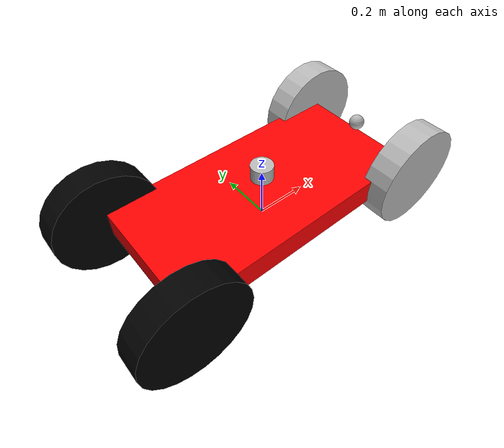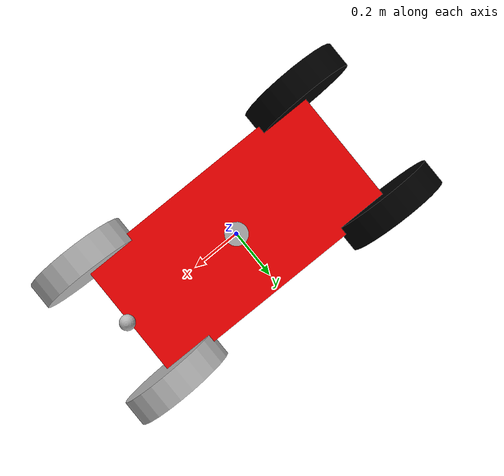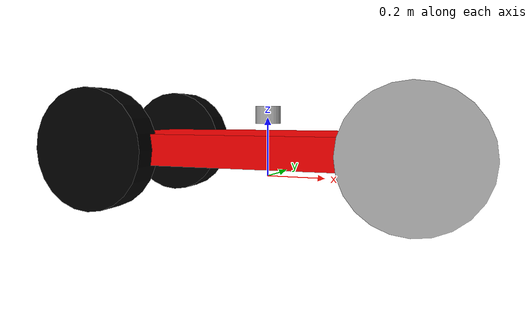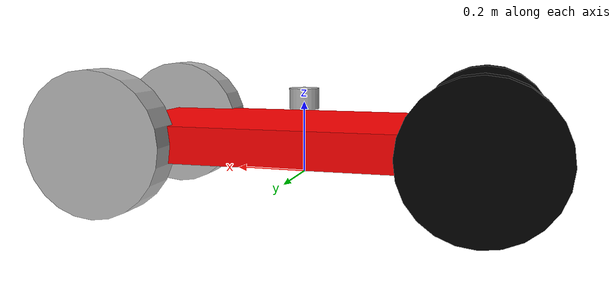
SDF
<?xml version='1.0'?>
<sdf version='1.6'>
  <model name='car2'>
    <link name='chassis'>
      <pose frame=''>0 0 0.1 0 -0 0</pose>
      <inertial>
        <inertia>
          <ixx>1</ixx>
          <ixy>0</ixy>
          <ixz>0</ixz>
          <iyy>1</iyy>
          <iyz>0</iyz>
          <izz>1</izz>
        </inertia>
        <mass>5</mass>
      </inertial>
      <self_collide>0</self_collide>
      <enable_wind>0</enable_wind>
      <kinematic>0</kinematic>
      <visual name='visual'>
        <geometry>
          <box>
            <size>1 0.5 0.1</size>
          </box>
        </geometry>
        <material>
          <script>
            <name>ModelPreview_2::left_front_wheel::visual_MATERIAL_</name>
            <uri>__default__</uri>
          </script>
          <ambient>1 0 0 1</ambient>
          <shader type='vertex'>
            <normal_map>__default__</normal_map>
          </shader>
          <emissive>0 0 0 1</emissive>
        </material>
        <pose frame=''>0 0 0 0 -0 0</pose>
        <transparency>0</transparency>
        <cast_shadows>1</cast_shadows>
      </visual>
      <collision name='collision'>
        <laser_retro>0</laser_retro>
        <max_contacts>10</max_contacts>
        <pose frame=''>0 0 0 0 -0 0</pose>
        <geometry>
          <box>
            <size>1 0.5 0.1</size>
          </box>
        </geometry>
        <surface>
          <friction>
            <ode>
              <mu>1</mu>
              <mu2>1</mu2>
              <fdir1>0 0 0</fdir1>
              <slip1>0</slip1>
              <slip2>0</slip2>
            </ode>
            <torsional>
              <coefficient>1</coefficient>
              <patch_radius>0</patch_radius>
              <surface_radius>0</surface_radius>
              <use_patch_radius>1</use_patch_radius>
              <ode>
                <slip>0</slip>
              </ode>
            </torsional>
          </friction>
          <bounce>
            <restitution_coefficient>0</restitution_coefficient>
            <threshold>1e+06</threshold>
          </bounce>
          <contact>
            <collide_without_contact>0</collide_without_contact>
            <collide_without_contact_bitmask>1</collide_without_contact_bitmask>
            <collide_bitmask>1</collide_bitmask>
            <ode>
              <soft_cfm>0</soft_cfm>
              <soft_erp>0.2</soft_erp>
              <kp>1e+13</kp>
              <kd>1</kd>
              <max_vel>0.01</max_vel>
              <min_depth>0</min_depth>
            </ode>
            <bullet>
              <split_impulse>1</split_impulse>
              <split_impulse_penetration_threshold>-0.01</split_impulse_penetration_threshold>
              <soft_cfm>0</soft_cfm>
              <soft_erp>0.2</soft_erp>
              <kp>1e+13</kp>
              <kd>1</kd>
            </bullet>
          </contact>
        </surface>
      </collision>
    </link>
    <link name='base'>
      <pose frame=''>0 0 0.210665 0 -0 0</pose>
      <inertial>
        <mass>1.2</mass>
        <inertia>
          <ixx>0.00108747</ixx>
          <iyy>0.00108747</iyy>
          <izz>0.00109244</izz>
          <ixy>0</ixy>
          <ixz>0</ixz>
          <iyz>0</iyz>
        </inertia>
        <pose frame=''>0 0 0 0 -0 0</pose>
      </inertial>
      <self_collide>0</self_collide>
      <enable_wind>0</enable_wind>
      <kinematic>0</kinematic>
      <gravity>1</gravity>
      <visual name='base_visual'>
        <geometry>
          <cylinder>
            <radius>0.04267</radius>
            <length>0.05867</length>
          </cylinder>
        </geometry>
        <pose frame=''>0 0 0 0 -0 0</pose>
        <transparency>0</transparency>
        <cast_shadows>1</cast_shadows>
        <material>
          <shader type='vertex'>
            <normal_map>__default__</normal_map>
          </shader>
          <emissive>0 0 0 1</emissive>
        </material>
      </visual>
      <collision name='base_collision'>
        <laser_retro>0</laser_retro>
        <max_contacts>10</max_contacts>
        <pose frame=''>0 0 0 0 -0 0</pose>
        <geometry>
          <cylinder>
            <radius>0.04267</radius>
            <length>0.05867</length>
          </cylinder>
        </geometry>
        <surface>
          <friction>
            <ode>
              <mu>1</mu>
              <mu2>1</mu2>
              <fdir1>0 0 0</fdir1>
              <slip1>0</slip1>
              <slip2>0</slip2>
            </ode>
            <torsional>
              <coefficient>1</coefficient>
              <patch_radius>0</patch_radius>
              <surface_radius>0</surface_radius>
              <use_patch_radius>1</use_patch_radius>
              <ode>
                <slip>0</slip>
              </ode>
            </torsional>
          </friction>
          <bounce>
            <restitution_coefficient>0</restitution_coefficient>
            <threshold>1e+06</threshold>
          </bounce>
          <contact>
            <collide_without_contact>0</collide_without_contact>
            <collide_without_contact_bitmask>1</collide_without_contact_bitmask>
            <collide_bitmask>1</collide_bitmask>
            <ode>
              <soft_cfm>0</soft_cfm>
              <soft_erp>0.2</soft_erp>
              <kp>1e+13</kp>
              <kd>1</kd>
              <max_vel>0.01</max_vel>
              <min_depth>0</min_depth>
            </ode>
            <bullet>
              <split_impulse>1</split_impulse>
              <split_impulse_penetration_threshold>-0.01</split_impulse_penetration_threshold>
              <soft_cfm>0</soft_cfm>
              <soft_erp>0.2</soft_erp>
              <kp>1e+13</kp>
              <kd>1</kd>
            </bullet>
          </contact>
        </surface>
      </collision>
    </link>
    <link name='front_indicator'>
      <pose frame=''>0.5 0 0.18 0 -0 0</pose>
      <self_collide>0</self_collide>
      <inertial>
        <inertia>
          <ixx>1</ixx>
          <ixy>0</ixy>
          <ixz>0</ixz>
          <iyy>1</iyy>
          <iyz>0</iyz>
          <izz>1</izz>
        </inertia>
        <mass>1</mass>
      </inertial>
      <enable_wind>0</enable_wind>
      <kinematic>0</kinematic>
      <visual name='visual'>
        <geometry>
          <sphere>
            <radius>0.03</radius>
          </sphere>
        </geometry>
        <material/>
        <pose frame=''>0 0 0 0 -0 0</pose>
        <transparency>0</transparency>
        <cast_shadows>1</cast_shadows>
      </visual>
    </link>
    <link name='left_back_wheel'>
      <pose frame=''>-0.5 0.27 0.1 1.5707 -0 0</pose>
      <inertial>
        <inertia>
          <ixx>1</ixx>
          <ixy>0</ixy>
          <ixz>0</ixz>
          <iyy>1</iyy>
          <iyz>0</iyz>
          <izz>1</izz>
        </inertia>
        <mass>1</mass>
      </inertial>
      <self_collide>0</self_collide>
      <enable_wind>0</enable_wind>
      <kinematic>0</kinematic>
      <visual name='visual'>
        <geometry>
          <cylinder>
            <radius>0.2</radius>
            <length>0.1</length>
          </cylinder>
        </geometry>
        <material>
          <script>
            <name>ModelPreview_2::left_front_wheel::visual_MATERIAL_</name>
            <uri>__default__</uri>
          </script>
          <ambient>0 0 0 1</ambient>
          <shader type='vertex'>
            <normal_map>__default__</normal_map>
          </shader>
        </material>
        <pose frame=''>0 0 0 0 -0 0</pose>
        <transparency>0</transparency>
        <cast_shadows>1</cast_shadows>
      </visual>
      <collision name='collision'>
        <laser_retro>0</laser_retro>
        <max_contacts>10</max_contacts>
        <pose frame=''>0 0 0 0 -0 0</pose>
        <geometry>
          <cylinder>
            <radius>0.2</radius>
            <length>0.1</length>
          </cylinder>
        </geometry>
        <surface>
          <friction>
            <ode>
              <mu>1</mu>
              <mu2>1</mu2>
              <fdir1>0 0 0</fdir1>
              <slip1>0</slip1>
              <slip2>0</slip2>
            </ode>
            <torsional>
              <coefficient>1</coefficient>
              <patch_radius>0</patch_radius>
              <surface_radius>0</surface_radius>
              <use_patch_radius>1</use_patch_radius>
              <ode>
                <slip>0</slip>
              </ode>
            </torsional>
          </friction>
          <bounce>
            <restitution_coefficient>0</restitution_coefficient>
            <threshold>1e+06</threshold>
          </bounce>
          <contact>
            <collide_without_contact>0</collide_without_contact>
            <collide_without_contact_bitmask>1</collide_without_contact_bitmask>
            <collide_bitmask>1</collide_bitmask>
            <ode>
              <soft_cfm>0</soft_cfm>
              <soft_erp>0.2</soft_erp>
              <kp>1e+13</kp>
              <kd>1</kd>
              <max_vel>0.01</max_vel>
              <min_depth>0</min_depth>
            </ode>
            <bullet>
              <split_impulse>1</split_impulse>
              <split_impulse_penetration_threshold>-0.01</split_impulse_penetration_threshold>
              <soft_cfm>0</soft_cfm>
              <soft_erp>0.2</soft_erp>
              <kp>1e+13</kp>
              <kd>1</kd>
            </bullet>
          </contact>
        </surface>
      </collision>
    </link>
    <link name='left_front_wheel'>
      <pose frame=''>0.5 0.27 0.1 1.5707 -0 0</pose>
      <inertial>
        <inertia>
          <ixx>1</ixx>
          <ixy>0</ixy>
          <ixz>0</ixz>
          <iyy>1</iyy>
          <iyz>0</iyz>
          <izz>1</izz>
        </inertia>
        <mass>1</mass>
      </inertial>
      <self_collide>0</self_collide>
      <enable_wind>0</enable_wind>
      <kinematic>0</kinematic>
      <visual name='visual'>
        <geometry>
          <cylinder>
            <radius>0.2</radius>
            <length>0.1</length>
          </cylinder>
        </geometry>
        <pose frame=''>0 0 0 0 -0 0</pose>
        <transparency>0</transparency>
        <cast_shadows>1</cast_shadows>
      </visual>
      <collision name='collision'>
        <laser_retro>0</laser_retro>
        <max_contacts>10</max_contacts>
        <pose frame=''>0 0 0 0 -0 0</pose>
        <geometry>
          <cylinder>
            <radius>0.2</radius>
            <length>0.1</length>
          </cylinder>
        </geometry>
        <surface>
          <friction>
            <ode>
              <mu>1</mu>
              <mu2>1</mu2>
              <fdir1>0 0 0</fdir1>
              <slip1>0</slip1>
              <slip2>0</slip2>
            </ode>
            <torsional>
              <coefficient>1</coefficient>
              <patch_radius>0</patch_radius>
              <surface_radius>0</surface_radius>
              <use_patch_radius>1</use_patch_radius>
              <ode>
                <slip>0</slip>
              </ode>
            </torsional>
          </friction>
          <bounce>
            <restitution_coefficient>0</restitution_coefficient>
            <threshold>1e+06</threshold>
          </bounce>
          <contact>
            <collide_without_contact>0</collide_without_contact>
            <collide_without_contact_bitmask>1</collide_without_contact_bitmask>
            <collide_bitmask>1</collide_bitmask>
            <ode>
              <soft_cfm>0</soft_cfm>
              <soft_erp>0.2</soft_erp>
              <kp>1e+13</kp>
              <kd>1</kd>
              <max_vel>0.01</max_vel>
              <min_depth>0</min_depth>
            </ode>
            <bullet>
              <split_impulse>1</split_impulse>
              <split_impulse_penetration_threshold>-0.01</split_impulse_penetration_threshold>
              <soft_cfm>0</soft_cfm>
              <soft_erp>0.2</soft_erp>
              <kp>1e+13</kp>
              <kd>1</kd>
            </bullet>
          </contact>
        </surface>
      </collision>
    </link>
    <link name='right_back_wheel'>
      <pose frame=''>-0.5 -0.27 0.1 1.5707 -0 0</pose>
      <inertial>
        <inertia>
          <ixx>1</ixx>
          <ixy>0</ixy>
          <ixz>0</ixz>
          <iyy>1</iyy>
          <iyz>0</iyz>
          <izz>1</izz>
        </inertia>
        <mass>1</mass>
      </inertial>
      <self_collide>0</self_collide>
      <enable_wind>0</enable_wind>
      <kinematic>0</kinematic>
      <visual name='visual'>
        <geometry>
          <cylinder>
            <radius>0.2</radius>
            <length>0.1</length>
          </cylinder>
        </geometry>
        <material>
          <script>
            <name>ModelPreview_2::left_front_wheel::visual_MATERIAL_</name>
            <uri>__default__</uri>
          </script>
          <ambient>0 0 0 1</ambient>
          <shader type='vertex'>
            <normal_map>__default__</normal_map>
          </shader>
        </material>
        <pose frame=''>0 0 0 0 -0 0</pose>
        <transparency>0</transparency>
        <cast_shadows>1</cast_shadows>
      </visual>
      <collision name='collision'>
        <laser_retro>0</laser_retro>
        <max_contacts>10</max_contacts>
        <pose frame=''>0 0 0 0 -0 0</pose>
        <geometry>
          <cylinder>
            <radius>0.2</radius>
            <length>0.1</length>
          </cylinder>
        </geometry>
        <surface>
          <friction>
            <ode>
              <mu>1</mu>
              <mu2>1</mu2>
              <fdir1>0 0 0</fdir1>
              <slip1>0</slip1>
              <slip2>0</slip2>
            </ode>
            <torsional>
              <coefficient>1</coefficient>
              <patch_radius>0</patch_radius>
              <surface_radius>0</surface_radius>
              <use_patch_radius>1</use_patch_radius>
              <ode>
                <slip>0</slip>
              </ode>
            </torsional>
          </friction>
          <bounce>
            <restitution_coefficient>0</restitution_coefficient>
            <threshold>1e+06</threshold>
          </bounce>
          <contact>
            <collide_without_contact>0</collide_without_contact>
            <collide_without_contact_bitmask>1</collide_without_contact_bitmask>
            <collide_bitmask>1</collide_bitmask>
            <ode>
              <soft_cfm>0</soft_cfm>
              <soft_erp>0.2</soft_erp>
              <kp>1e+13</kp>
              <kd>1</kd>
              <max_vel>0.01</max_vel>
              <min_depth>0</min_depth>
            </ode>
            <bullet>
              <split_impulse>1</split_impulse>
              <split_impulse_penetration_threshold>-0.01</split_impulse_penetration_threshold>
              <soft_cfm>0</soft_cfm>
              <soft_erp>0.2</soft_erp>
              <kp>1e+13</kp>
              <kd>1</kd>
            </bullet>
          </contact>
        </surface>
      </collision>
    </link>
    <link name='right_front_wheel'>
      <pose frame=''>0.5 -0.27 0.1 1.5707 -0 0</pose>
      <inertial>
        <inertia>
          <ixx>1</ixx>
          <ixy>0</ixy>
          <ixz>0</ixz>
          <iyy>1</iyy>
          <iyz>0</iyz>
          <izz>1</izz>
        </inertia>
        <mass>1</mass>
      </inertial>
      <self_collide>0</self_collide>
      <enable_wind>0</enable_wind>
      <kinematic>0</kinematic>
      <visual name='visual'>
        <geometry>
          <cylinder>
            <radius>0.2</radius>
            <length>0.1</length>
          </cylinder>
        </geometry>
        <pose frame=''>0 0 0 0 -0 0</pose>
        <transparency>0</transparency>
        <cast_shadows>1</cast_shadows>
      </visual>
      <collision name='collision'>
        <laser_retro>0</laser_retro>
        <max_contacts>10</max_contacts>
        <pose frame=''>0 0 0 0 -0 0</pose>
        <geometry>
          <cylinder>
            <radius>0.2</radius>
            <length>0.1</length>
          </cylinder>
        </geometry>
        <surface>
          <friction>
            <ode>
              <mu>1</mu>
              <mu2>1</mu2>
              <fdir1>0 0 0</fdir1>
              <slip1>0</slip1>
              <slip2>0</slip2>
            </ode>
            <torsional>
              <coefficient>1</coefficient>
              <patch_radius>0</patch_radius>
              <surface_radius>0</surface_radius>
              <use_patch_radius>1</use_patch_radius>
              <ode>
                <slip>0</slip>
              </ode>
            </torsional>
          </friction>
          <bounce>
            <restitution_coefficient>0</restitution_coefficient>
            <threshold>1e+06</threshold>
          </bounce>
          <contact>
            <collide_without_contact>0</collide_without_contact>
            <collide_without_contact_bitmask>1</collide_without_contact_bitmask>
            <collide_bitmask>1</collide_bitmask>
            <ode>
              <soft_cfm>0</soft_cfm>
              <soft_erp>0.2</soft_erp>
              <kp>1e+13</kp>
              <kd>1</kd>
              <max_vel>0.01</max_vel>
              <min_depth>0</min_depth>
            </ode>
            <bullet>
              <split_impulse>1</split_impulse>
              <split_impulse_penetration_threshold>-0.01</split_impulse_penetration_threshold>
              <soft_cfm>0</soft_cfm>
              <soft_erp>0.2</soft_erp>
              <kp>1e+13</kp>
              <kd>1</kd>
            </bullet>
          </contact>
        </surface>
      </collision>
    </link>
    <link name='top'>
      <pose frame=''>0 0 0.095455 0 -0 0</pose>
      <inertial>
        <mass>0.1</mass>
        <inertia>
          <ixx>9.0623e-05</ixx>
          <iyy>9.0623e-05</iyy>
          <izz>9.1036e-05</izz>
          <ixy>0</ixy>
          <ixz>0</ixz>
          <iyz>0</iyz>
        </inertia>
      </inertial>
      <sensor name='sensor' type='ray'>
        <pose frame=''>0 0 -0.004645 1.5707 -0 0</pose>
        <visualize>1</visualize>
        <update_rate>30</update_rate>
        <ray>
          <scan>
            <horizontal>
              <samples>32</samples>
              <resolution>1</resolution>
              <min_angle>-0.535292</min_angle>
              <max_angle>0.186227</max_angle>
            </horizontal>
            <vertical>
              <samples>1</samples>
              <min_angle>0</min_angle>
              <max_angle>0</max_angle>
            </vertical>
          </scan>
          <range>
            <min>0.05</min>
            <max>70</max>
            <resolution>0.02</resolution>
          </range>
        </ray>
      </sensor>
      <self_collide>0</self_collide>
      <enable_wind>0</enable_wind>
      <kinematic>0</kinematic>
      <visual name='top_visual'>
        <geometry>
          <cylinder>
            <radius>0.04267</radius>
            <length>0.07357</length>
          </cylinder>
        </geometry>
        <pose frame=''>0 0 0 0 -0 0</pose>
        <transparency>0</transparency>
        <cast_shadows>1</cast_shadows>
      </visual>
      <collision name='top_collision'>
        <laser_retro>0</laser_retro>
        <max_contacts>10</max_contacts>
        <pose frame=''>0 0 0 0 -0 0</pose>
        <geometry>
          <cylinder>
            <radius>0.04267</radius>
            <length>0.07357</length>
          </cylinder>
        </geometry>
        <surface>
          <friction>
            <ode>
              <mu>1</mu>
              <mu2>1</mu2>
              <fdir1>0 0 0</fdir1>
              <slip1>0</slip1>
              <slip2>0</slip2>
            </ode>
            <torsional>
              <coefficient>1</coefficient>
              <patch_radius>0</patch_radius>
              <surface_radius>0</surface_radius>
              <use_patch_radius>1</use_patch_radius>
              <ode>
                <slip>0</slip>
              </ode>
            </torsional>
          </friction>
          <bounce>
            <restitution_coefficient>0</restitution_coefficient>
            <threshold>1e+06</threshold>
          </bounce>
          <contact>
            <collide_without_contact>0</collide_without_contact>
            <collide_without_contact_bitmask>1</collide_without_contact_bitmask>
            <collide_bitmask>1</collide_bitmask>
            <ode>
              <soft_cfm>0</soft_cfm>
              <soft_erp>0.2</soft_erp>
              <kp>1e+13</kp>
              <kd>1</kd>
              <max_vel>0.01</max_vel>
              <min_depth>0</min_depth>
            </ode>
            <bullet>
              <split_impulse>1</split_impulse>
              <split_impulse_penetration_threshold>-0.01</split_impulse_penetration_threshold>
              <soft_cfm>0</soft_cfm>
              <soft_erp>0.2</soft_erp>
              <kp>1e+13</kp>
              <kd>1</kd>
            </bullet>
          </contact>
        </surface>
      </collision>
    </link>
    <joint name='chassis_JOINT_0' type='fixed'>
      <parent>chassis</parent>
      <child>base</child>
      <pose frame=''>0 0 0 0 -0 0</pose>
      <physics>
        <ode>
          <limit>
            <cfm>0</cfm>
            <erp>0.2</erp>
          </limit>
          <suspension>
            <cfm>0</cfm>
            <erp>0.2</erp>
          </suspension>
        </ode>
      </physics>
    </joint>
    <joint name='indicator_joint' type='fixed'>
      <parent>chassis</parent>
      <child>front_indicator</child>
      <pose frame=''>0 0 0 0 -0 0</pose>
      <physics>
        <ode>
          <limit>
            <cfm>0</cfm>
            <erp>0.2</erp>
          </limit>
          <suspension>
            <cfm>0</cfm>
            <erp>0.2</erp>
          </suspension>
        </ode>
      </physics>
    </joint>
    <joint name='joint' type='revolute'>
      <parent>base</parent>
      <child>top</child>
      <pose frame=''>0 0 -0.036785 0 -0 0</pose>
      <axis>
        <xyz>0 0 1</xyz>
        <use_parent_model_frame>1</use_parent_model_frame>
        <limit>
          <lower>-1e+16</lower>
          <upper>1e+16</upper>
          <effort>-1</effort>
          <velocity>-1</velocity>
        </limit>
        <dynamics>
          <spring_reference>0</spring_reference>
          <spring_stiffness>0</spring_stiffness>
          <damping>0</damping>
          <friction>0</friction>
        </dynamics>
      </axis>
      <physics>
        <ode>
          <limit>
            <cfm>0</cfm>
            <erp>0.2</erp>
          </limit>
          <suspension>
            <cfm>0</cfm>
            <erp>0.2</erp>
          </suspension>
        </ode>
      </physics>
    </joint>
    <joint name='left_back_wheel_hinge' type='revolute'>
      <parent>chassis</parent>
      <child>left_back_wheel</child>
      <pose frame=''>0 0 0 0 -0 0</pose>
      <axis>
        <xyz>0 1 0</xyz>
        <use_parent_model_frame>1</use_parent_model_frame>
        <limit>
          <lower>-1e+16</lower>
          <upper>1e+16</upper>
          <effort>-1</effort>
          <velocity>-1</velocity>
        </limit>
        <dynamics>
          <spring_reference>0</spring_reference>
          <spring_stiffness>0</spring_stiffness>
          <damping>0</damping>
          <friction>0</friction>
        </dynamics>
      </axis>
      <physics>
        <ode>
          <limit>
            <cfm>0</cfm>
            <erp>0.2</erp>
          </limit>
          <suspension>
            <cfm>0</cfm>
            <erp>0.2</erp>
          </suspension>
        </ode>
      </physics>
    </joint>
    <joint name='left_front_wheel_hinge' type='revolute'>
      <parent>chassis</parent>
      <child>left_front_wheel</child>
      <pose frame=''>0 0 0 0 -0 0</pose>
      <axis>
        <xyz>0 1 0</xyz>
        <use_parent_model_frame>1</use_parent_model_frame>
        <limit>
          <lower>-1e+16</lower>
          <upper>1e+16</upper>
          <effort>-1</effort>
          <velocity>-1</velocity>
        </limit>
        <dynamics>
          <spring_reference>0</spring_reference>
          <spring_stiffness>0</spring_stiffness>
          <damping>0</damping>
          <friction>0</friction>
        </dynamics>
      </axis>
      <physics>
        <ode>
          <limit>
            <cfm>0</cfm>
            <erp>0.2</erp>
          </limit>
          <suspension>
            <cfm>0</cfm>
            <erp>0.2</erp>
          </suspension>
        </ode>
      </physics>
    </joint>
    <joint name='right_back_wheel_hinge' type='revolute'>
      <parent>chassis</parent>
      <child>right_back_wheel</child>
      <pose frame=''>0 0 0 0 -0 0</pose>
      <axis>
        <xyz>0 1 0</xyz>
        <use_parent_model_frame>1</use_parent_model_frame>
        <limit>
          <lower>-1e+16</lower>
          <upper>1e+16</upper>
          <effort>-1</effort>
          <velocity>-1</velocity>
        </limit>
        <dynamics>
          <spring_reference>0</spring_reference>
          <spring_stiffness>0</spring_stiffness>
          <damping>0</damping>
          <friction>0</friction>
        </dynamics>
      </axis>
      <physics>
        <ode>
          <limit>
            <cfm>0</cfm>
            <erp>0.2</erp>
          </limit>
          <suspension>
            <cfm>0</cfm>
            <erp>0.2</erp>
          </suspension>
        </ode>
      </physics>
    </joint>
    <joint name='right_front_wheel_hinge' type='revolute'>
      <parent>chassis</parent>
      <child>right_front_wheel</child>
      <pose frame=''>0 0 0 0 -0 0</pose>
      <axis>
        <xyz>0 1 0</xyz>
        <use_parent_model_frame>1</use_parent_model_frame>
        <limit>
          <lower>-1e+16</lower>
          <upper>1e+16</upper>
          <effort>-1</effort>
          <velocity>-1</velocity>
        </limit>
        <dynamics>
          <spring_reference>0</spring_reference>
          <spring_stiffness>0</spring_stiffness>
          <damping>0</damping>
          <friction>0</friction>
        </dynamics>
      </axis>
      <physics>
        <ode>
          <limit>
            <cfm>0</cfm>
            <erp>0.2</erp>
          </limit>
          <suspension>
            <cfm>0</cfm>
            <erp>0.2</erp>
          </suspension>
        </ode>
      </physics>
    </joint>
    <static>0</static>
    <allow_auto_disable>1</allow_auto_disable>
    <plugin name='wheeledRobot' filename='libwheeledRobot.so'/>
  </model>
</sdf>
